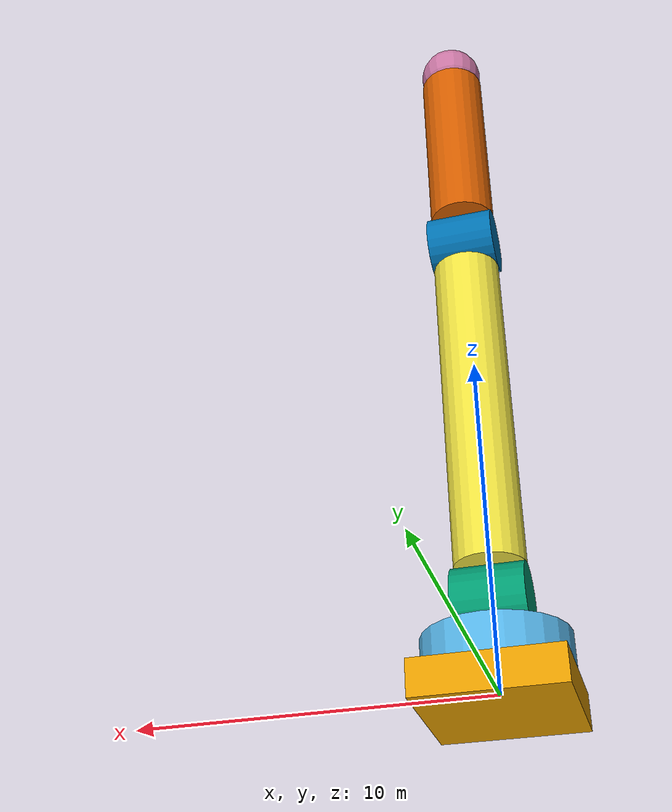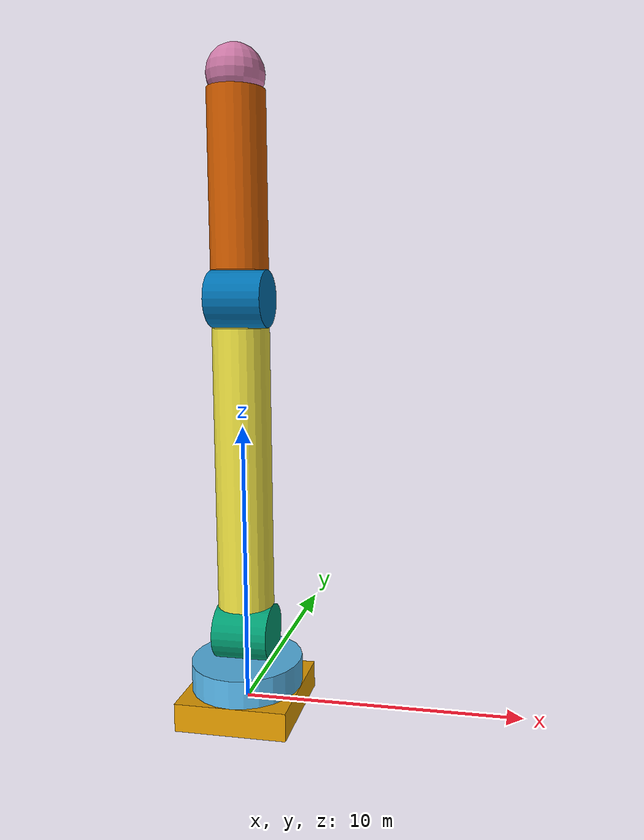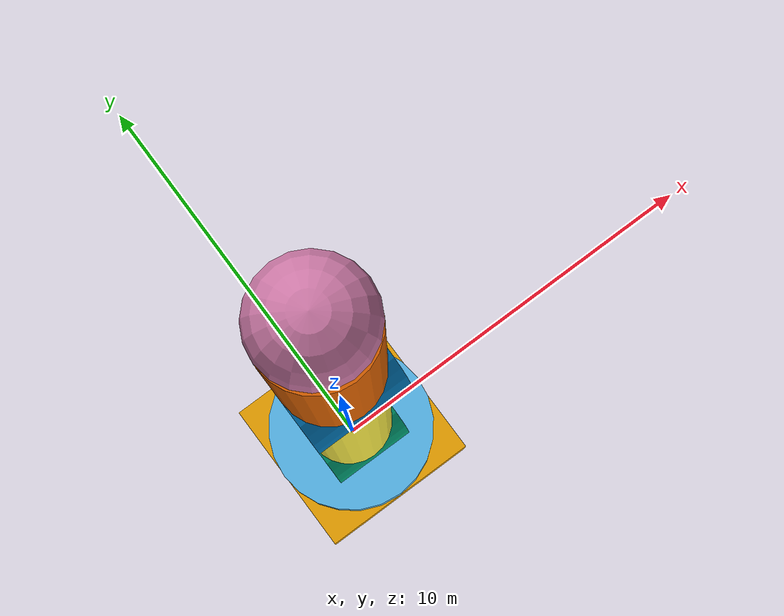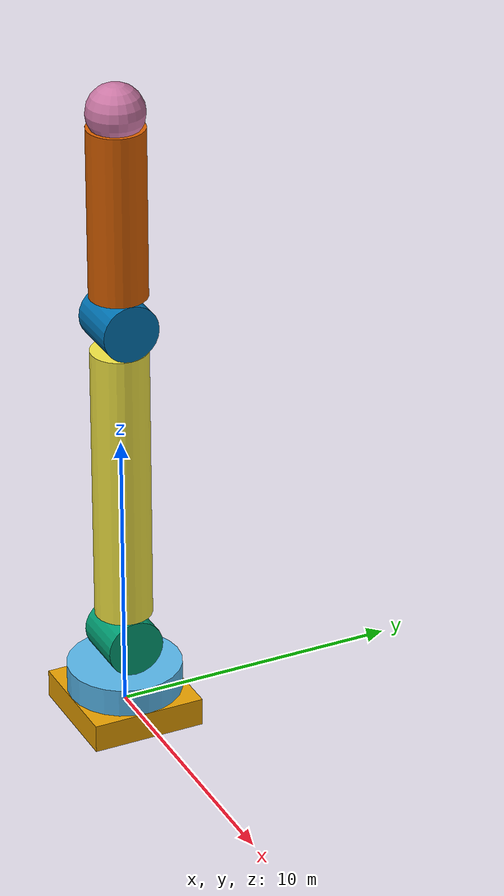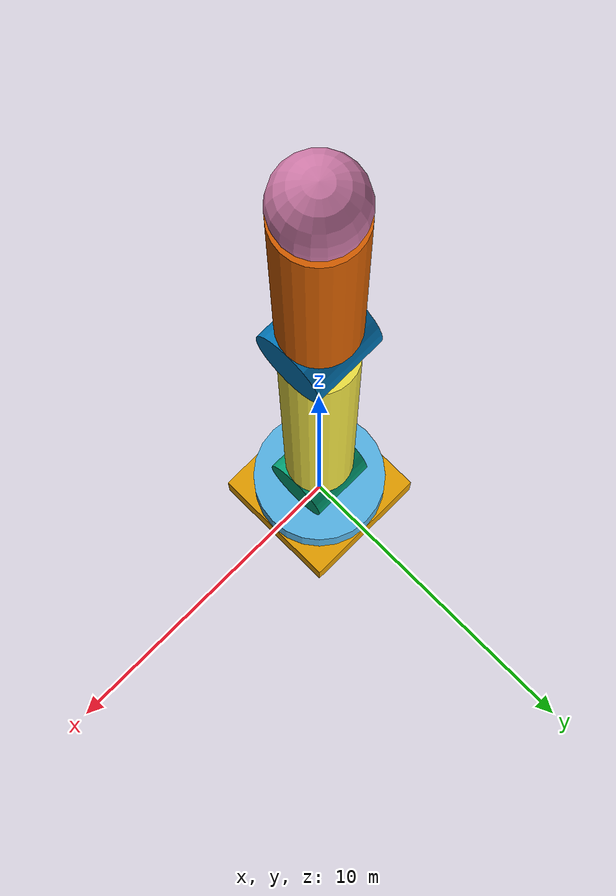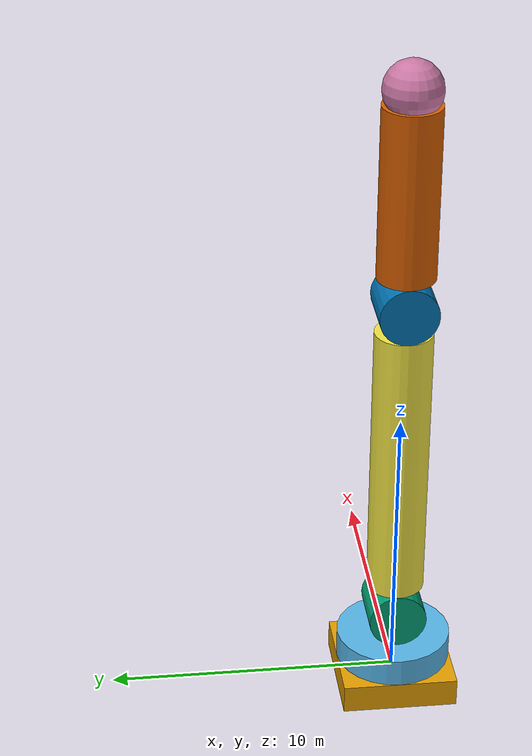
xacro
<?xml version="1.0"?>
<robot xmlns:xacro="http://www.ros.org/wiki/xacro" name="improved_robot">
    <xacro:arg name="initial_positions_file" default="initial_positions.yaml" />

    <!-- Import improved_robot urdf file -->
    <xacro:include filename="$(find my_jointed_robot)/urdf/ImprovedJointedRobot.urdf" />

    <!-- Import control_xacro -->
    <xacro:include filename="improved_robot.ros2_control.xacro" />

    <xacro:improved_robot_ros2_control name="FakeSystem" initial_positions_file="$(arg initial_positions_file)"/>

</robot>

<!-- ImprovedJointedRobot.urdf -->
<robot name="improved_robot">

<link name="base_link">
    <visual>
      <geometry>
        <box size="4 4 1"/>
      </geometry>
    </visual>
    <collision>
      <geometry>
        <box size="4 4 1"/>
      </geometry>
    </collision>
</link>

<link name="rotator1">
    <visual>
      <geometry>
        <cylinder radius="2" length="1"/>
      </geometry>
    </visual>
    <collision>
      <geometry>
        <cylinder radius="2" length="1"/>
      </geometry>
    </collision>
</link>

<link name="pivot1">
    <visual>
      <origin xyz="0 0 0" rpy="0 1.57 0"/>
      <geometry>
        <cylinder radius="1" length="2"/>
      </geometry>
    </visual>
     <collision>
      <geometry>
        <cylinder radius="1" length="2"/>
      </geometry>
    </collision>
</link>

<link name ="arm1">
    <visual>
      <origin xyz="0 0 6" rpy="0 0 0"/>
      <geometry>
        <cylinder radius="1" length="10"/>
      </geometry>
    </visual>
    <collision>
      <geometry>
        <cylinder radius="1" length="10"/>
      </geometry>
    </collision>
</link>

<link name="pivot2">
    <visual>
      <origin xyz="0 0 0" rpy="0 1.57 0"/>
      <geometry>
        <cylinder radius="1" length="2"/>
      </geometry>
    </visual>
    <collision>
      <geometry>
        <cylinder radius="1" length="2"/>
      </geometry>
    </collision>
</link>

<link name ="arm2">
    <visual>
      <origin xyz="0 0 4" rpy="0 0 0"/>
      <geometry>
        <cylinder radius="1" length="6"/>
      </geometry>
    </visual>
    <collision>
      <geometry>
        <cylinder radius="1" length="6"/>
      </geometry>
    </collision>
</link>

<link name ="end_effector">
    <visual>
      <origin xyz="0 0 0" rpy="0 0 0"/>
      <geometry>
        <sphere radius="1"/>
      </geometry>
    </visual>
    <collision>
      <geometry>
        <sphere radius="1"/>
      </geometry>
    </collision>
</link>

<joint name="base_link_to_rotator1" type="continuous">
  <origin xyz="0 0 1" rpy="0 0 0"/>
  <axis xyz="0 0 1"/>
  <parent link="base_link"/>
  <child link="rotator1"/>
</joint>

<joint name="rotator1_to_pivot1" type="fixed">
  <origin xyz="0 0 1.5" rpy="0 0 0"/>
  <parent link="rotator1"/>
  <child link="pivot1"/>
</joint>

<joint name="pivot1_to_arm1" type="revolute">
  <parent link="pivot1"/>
  <child link="arm1"/>
  <axis xyz="1 0 0"/>
  <limit lower="-1.57" upper="1.57" effort="30" velocity="1"/>
</joint>

<joint name="arm1_to_pivot2" type="continuous">
  <parent link="arm1"/>
  <child link="pivot2"/>
  <origin xyz="0 0 12" rpy="0 0 0"/>
  <axis xyz="0 0 1"/>
</joint>

<joint name="pivot2_to_arm2" type="revolute">
  <parent link="pivot2"/>
  <child link="arm2"/>
  <axis xyz="1 0 0"/>
  <limit lower="-1.57" upper="1.57" effort="30" velocity="1"/>
</joint>

<joint name="arm2_to_end_effector" type="fixed">
  <origin xyz="0 0 7.5" rpy="0 0 0"/>
  <parent link="arm2"/>
  <child link="end_effector"/>
</joint>
</robot>
